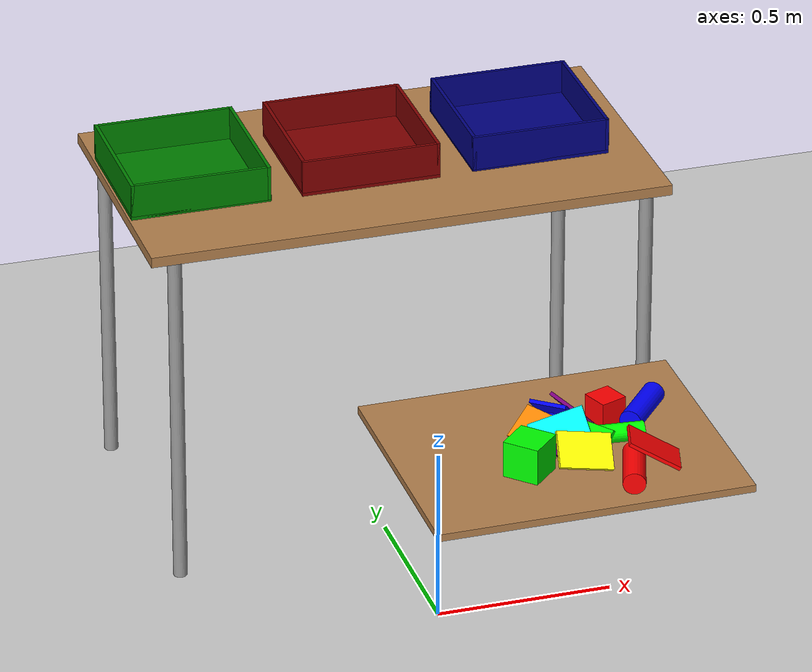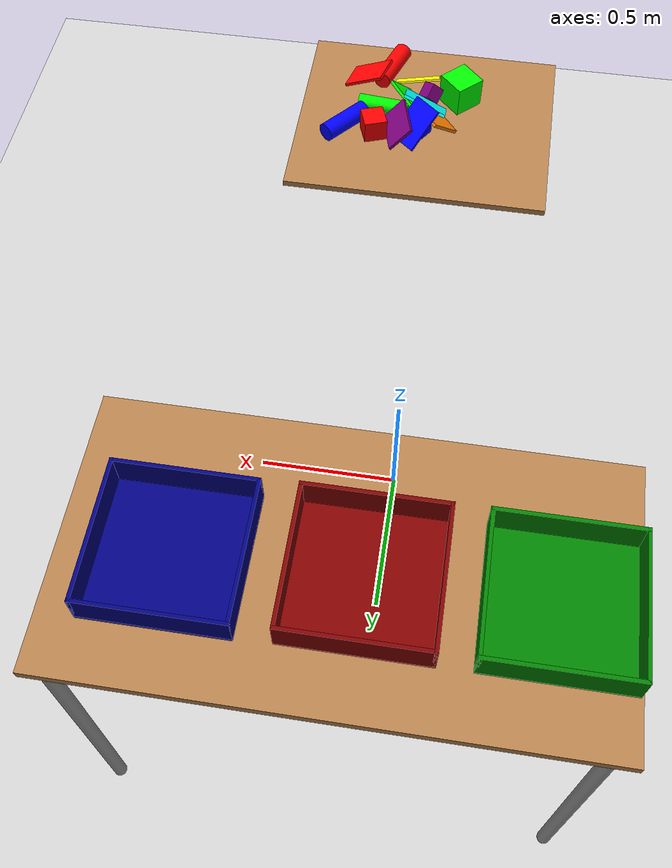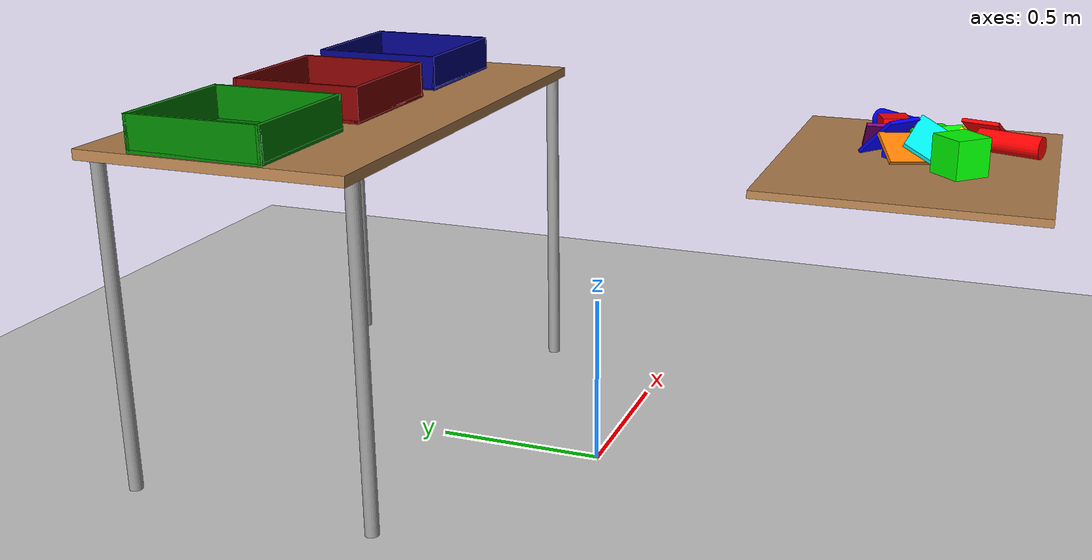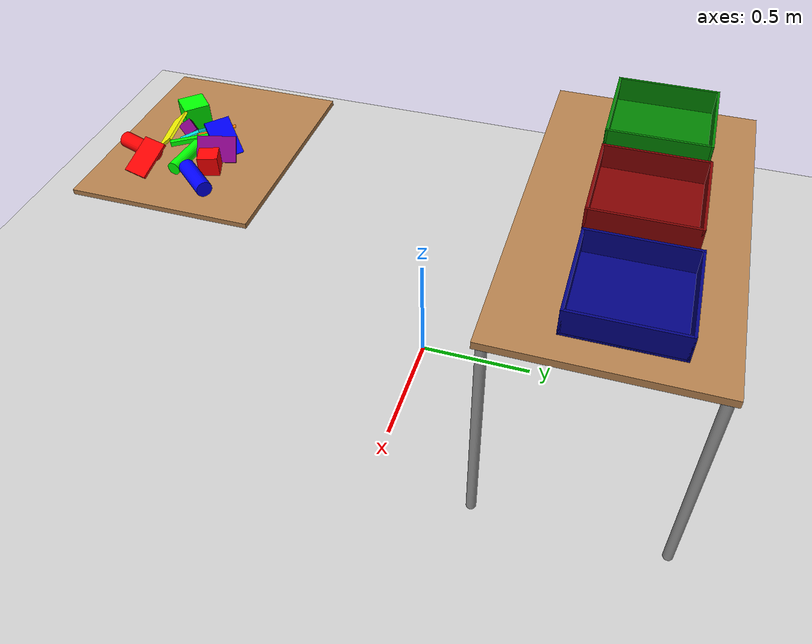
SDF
<sdf version="1.7">
 <world name="default">
  <light name="sun" type="directional">
   <pose>0 0 10 0 -0 0</pose>
   <diffuse>0.8 0.8 0.8 1</diffuse>
   <specular>0.2 0.2 0.2 1</specular>
   <attenuation>
    <range>1000</range>
    <constant>0.9</constant>
    <linear>0.01</linear>
    <quadratic>0.001</quadratic>
   </attenuation>
   <direction>-0.5 0.1 -0.9</direction>
   <spot><inner_angle>0</inner_angle><outer_angle>0</outer_angle><falloff>0</falloff></spot>
  </light>
  <model name="ground_plane">
   <static>1</static>
   <link name="link">
    <collision name="collision">
     <geometry><plane><normal>0 0 1</normal><size>100 100</size></plane></geometry>
     <surface><friction><ode><mu>100</mu><mu2>50</mu2></ode></friction></surface>
    </collision>
    <visual name="visual">
     <cast_shadows>0</cast_shadows>
     <geometry><plane><normal>0 0 1</normal><size>100 100</size></plane></geometry>
     <material>
      <script><uri>file://media/materials/scripts/gazebo.material</uri><name>Gazebo/Grey</name></script>
     </material>
    </visual>
   </link>
  </model>
  <gravity>0 0 -9.8</gravity>
  <magnetic_field>6e-06 2.3e-05 -4.2e-05</magnetic_field>
  <atmosphere type="adiabatic"/>
  <physics type="ode">
   <max_step_size>0.001</max_step_size>
   <real_time_factor>1</real_time_factor>
   <real_time_update_rate>1000</real_time_update_rate>
  </physics>
  <scene><ambient>0.4 0.4 0.4 1</ambient><background>0.7 0.7 0.7 1</background><shadows>1</shadows></scene>
  <audio><device>default</device></audio>
  <spherical_coordinates>
   <surface_model>EARTH_WGS84</surface_model>
   <latitude_deg>0</latitude_deg>
   <longitude_deg>0</longitude_deg>
   <elevation>0</elevation>
   <heading_deg>0</heading_deg>
  </spherical_coordinates>
  <model name="table">
   <static>1</static>
   <link name="link">
    <collision name="surface">
     <pose>0 0 1 0 -0 0</pose>
     <geometry><box><size>1.5 0.8 0.03</size></box></geometry>
     <surface>
      <friction><ode><mu>10</mu><mu2>5</mu2></ode></friction>
      <contact><ode><soft_cfm>0.0001</soft_cfm><soft_erp>0.4</soft_erp><kp>1e+06</kp><kd>10</kd></ode></contact>
     </surface>
    </collision>
    <visual name="visual1">
     <pose>0 0 1 0 -0 0</pose>
     <geometry><box><size>1.5 0.8 0.03</size></box></geometry>
     <material>
      <script><uri>file://media/materials/scripts/gazebo.material</uri><name>Gazebo/Wood</name></script>
     </material>
    </visual>
    <collision name="front_left_leg">
     <pose>0.68 0.38 0.5 0 -0 0</pose>
     <geometry><cylinder><radius>0.02</radius><length>1</length></cylinder></geometry>
    </collision>
    <visual name="front_left_leg">
     <pose>0.68 0.38 0.5 0 -0 0</pose>
     <geometry><cylinder><radius>0.02</radius><length>1</length></cylinder></geometry>
     <material>
      <script><uri>file://media/materials/scripts/gazebo.material</uri><name>Gazebo/Grey</name></script>
     </material>
    </visual>
    <collision name="front_right_leg">
     <pose>0.68 -0.38 0.5 0 -0 0</pose>
     <geometry><cylinder><radius>0.02</radius><length>1</length></cylinder></geometry>
    </collision>
    <visual name="front_right_leg">
     <pose>0.68 -0.38 0.5 0 -0 0</pose>
     <geometry><cylinder><radius>0.02</radius><length>1</length></cylinder></geometry>
     <material>
      <script><uri>file://media/materials/scripts/gazebo.material</uri><name>Gazebo/Grey</name></script>
     </material>
    </visual>
    <collision name="back_right_leg">
     <pose>-0.68 -0.38 0.5 0 -0 0</pose>
     <geometry><cylinder><radius>0.02</radius><length>1</length></cylinder></geometry>
    </collision>
    <visual name="back_right_leg">
     <pose>-0.68 -0.38 0.5 0 -0 0</pose>
     <geometry><cylinder><radius>0.02</radius><length>1</length></cylinder></geometry>
     <material>
      <script><uri>file://media/materials/scripts/gazebo.material</uri><name>Gazebo/Grey</name></script>
     </material>
    </visual>
    <collision name="back_left_leg">
     <pose>-0.68 0.38 0.5 0 -0 0</pose>
     <geometry><cylinder><radius>0.02</radius><length>1</length></cylinder></geometry>
    </collision>
    <visual name="back_left_leg">
     <pose>-0.68 0.38 0.5 0 -0 0</pose>
     <geometry><cylinder><radius>0.02</radius><length>1</length></cylinder></geometry>
     <material>
      <script><uri>file://media/materials/scripts/gazebo.material</uri><name>Gazebo/Grey</name></script>
     </material>
    </visual>
    <inertial>
     <inertia><ixx>1</ixx><ixy>0</ixy><ixz>0</ixz><iyy>1</iyy><iyz>0</iyz><izz>1</izz></inertia>
     <mass>50</mass>
    </inertial>
   </link>
   <pose>0.056083 0.801191 -1.2e-05 0 -0 2.5e-05</pose>
  </model>
  <plugin name="gazebo_link_attacher" filename="libgazebo_link_attacher.so"/>
  <plugin name="gazebo_ros_state" filename="libgazebo_ros_state.so">
   <namespace>/gazebo</namespace>
   <update_rate>100</update_rate>
  </plugin>
  <model name="cube_b">
   <link name="link_2">
    <inertial>
     <mass>2</mass>
     <inertia>
      <ixx>0.00083333</ixx>
      <ixy>0</ixy>
      <ixz>0</ixz>
      <iyy>0.00083333</iyy>
      <iyz>0</iyz>
      <izz>0.00083333</izz>
     </inertia>
    </inertial>
    <visual name="visual">
     <geometry><box><size>0.05 0.05 0.05</size></box></geometry>
     <material>
      <lighting>1</lighting>
      <script><uri>file://media/materials/scripts/gazebo.material</uri><name>Gazebo/Grey</name></script>
      <ambient>0 0 1 1</ambient>
      <diffuse>0 0 1 1</diffuse>
      <specular>0 0 0 1</specular>
      <emissive>0 0 0 1</emissive>
      <shader type="vertex"><normal_map>__default__</normal_map></shader>
     </material>
    </visual>
    <collision name="collision">
     <geometry><box><size>0.05 0.05 0.05</size></box></geometry>
     <surface>
      <friction>
       <ode><mu>0.8</mu><mu2>0.8</mu2><fdir1>0 0 0</fdir1><slip1>0</slip1><slip2>0</slip2></ode>
       <torsional>
        <coefficient>1</coefficient>
        <patch_radius>0</patch_radius>
        <surface_radius>0</surface_radius>
        <use_patch_radius>1</use_patch_radius>
        <ode><slip>0</slip></ode>
       </torsional>
      </friction>
      <bounce><restitution_coefficient>0</restitution_coefficient><threshold>1e+06</threshold></bounce>
      <contact>
       <collide_without_contact>0</collide_without_contact>
       <collide_without_contact_bitmask>1</collide_without_contact_bitmask>
       <collide_bitmask>1</collide_bitmask>
       <ode>
        <soft_cfm>0.0001</soft_cfm>
        <soft_erp>0.4</soft_erp>
        <kp>1e+06</kp>
        <kd>10</kd>
        <max_vel>0.01</max_vel>
        <min_depth>0</min_depth>
       </ode>
      </contact>
     </surface>
    </collision>
   </link>
   <static>0</static>
   <allow_auto_disable>0</allow_auto_disable>
   <pose>0.050526 -0.803777 1.01082 -0.003674 0.003183 2.56462</pose>
  </model>
  <model name="cube_g">
   <link name="link_2">
    <inertial>
     <mass>2</mass>
     <inertia>
      <ixx>0.00333333</ixx>
      <iyy>0.00333333</iyy>
      <izz>0.00333333</izz>
      <ixy>0</ixy>
      <ixz>0</ixz>
      <iyz>0</iyz>
     </inertia>
    </inertial>
    <visual name="visual">
     <geometry><box><size>0.1 0.1 0.1</size></box></geometry>
     <material>
      <lighting>1</lighting>
      <script><uri>file://media/materials/scripts/gazebo.material</uri><name>Gazebo/Grey</name></script>
      <ambient>0 1 0 1</ambient>
      <diffuse>0 1 0 1</diffuse>
      <specular>0 0 0 1</specular>
      <emissive>0 0 0 1</emissive>
      <shader type="vertex"><normal_map>__default__</normal_map></shader>
     </material>
    </visual>
    <collision name="collision">
     <geometry><box><size>0.1 0.1 0.1</size></box></geometry>
     <surface>
      <friction>
       <ode><mu>0.8</mu><mu2>0.8</mu2><fdir1>0 0 0</fdir1><slip1>0</slip1><slip2>0</slip2></ode>
       <torsional>
        <coefficient>1</coefficient>
        <patch_radius>0</patch_radius>
        <surface_radius>0</surface_radius>
        <use_patch_radius>1</use_patch_radius>
        <ode><slip>0</slip></ode>
       </torsional>
      </friction>
      <bounce><restitution_coefficient>0</restitution_coefficient><threshold>1e+06</threshold></bounce>
      <contact>
       <collide_without_contact>0</collide_without_contact>
       <collide_without_contact_bitmask>1</collide_without_contact_bitmask>
       <collide_bitmask>1</collide_bitmask>
       <ode>
        <soft_cfm>0.0001</soft_cfm>
        <soft_erp>0.4</soft_erp>
        <kp>1e+06</kp>
        <kd>10</kd>
        <max_vel>0.01</max_vel>
        <min_depth>0</min_depth>
       </ode>
      </contact>
     </surface>
    </collision>
   </link>
   <static>0</static>
   <allow_auto_disable>0</allow_auto_disable>
   <pose>-0.064502 -0.974048 1.03517 -0.002148 -0.003791 0.772024</pose>
  </model>
  <model name="cube_r">
   <link name="link_2">
    <inertial>
     <mass>2</mass>
     <inertia>
      <ixx>0.001875</ixx>
      <ixy>0</ixy>
      <ixz>0</ixz>
      <iyy>0.001875</iyy>
      <iyz>0</iyz>
      <izz>0.001875</izz>
     </inertia>
    </inertial>
    <visual name="visual">
     <geometry><box><size>0.075 0.075 0.075</size></box></geometry>
     <material>
      <lighting>1</lighting>
      <script><uri>file://media/materials/scripts/gazebo.material</uri><name>Gazebo/Grey</name></script>
      <ambient>1 0 0 1</ambient>
      <diffuse>1 0 0 1</diffuse>
      <specular>0 0 0 1</specular>
      <emissive>0 0 0 1</emissive>
      <shader type="vertex"><normal_map>__default__</normal_map></shader>
     </material>
    </visual>
    <collision name="collision">
     <geometry><box><size>0.075 0.075 0.075</size></box></geometry>
     <surface>
      <friction>
       <ode><mu>0.8</mu><mu2>0.8</mu2><fdir1>0 0 0</fdir1><slip1>0</slip1><slip2>0</slip2></ode>
       <torsional>
        <coefficient>1</coefficient>
        <patch_radius>0</patch_radius>
        <surface_radius>0</surface_radius>
        <use_patch_radius>1</use_patch_radius>
        <ode><slip>0</slip></ode>
       </torsional>
      </friction>
      <bounce><restitution_coefficient>0</restitution_coefficient><threshold>1e+06</threshold></bounce>
      <contact>
       <collide_without_contact>0</collide_without_contact>
       <collide_without_contact_bitmask>1</collide_without_contact_bitmask>
       <collide_bitmask>1</collide_bitmask>
       <ode>
        <soft_cfm>0.0001</soft_cfm>
        <soft_erp>0.4</soft_erp>
        <kp>1e+06</kp>
        <kd>10</kd>
        <max_vel>0.01</max_vel>
        <min_depth>0</min_depth>
       </ode>
      </contact>
     </surface>
    </collision>
   </link>
   <static>0</static>
   <allow_auto_disable>0</allow_auto_disable>
   <pose>0.207484 -0.775313 1.02403 -1.56654 -0.000352 -1.21932</pose>
  </model>
  <model name="cylinder_r">
   <link name="link_0">
    <inertial>
     <mass>0.2</mass>
     <inertia>
      <ixx>0.0005267</ixx>
      <ixy>0</ixy>
      <ixz>0</ixz>
      <iyy>0.0005267</iyy>
      <iyz>0</iyz>
      <izz>9e-05</izz>
     </inertia>
    </inertial>
    <visual name="visual">
     <geometry><cylinder><radius>0.03</radius><length>0.17</length></cylinder></geometry>
     <material>
      <lighting>1</lighting>
      <script><uri>file://media/materials/scripts/gazebo.material</uri><name>Gazebo/Grey</name></script>
      <ambient>1 0 0 1</ambient>
      <diffuse>1 0 0 1</diffuse>
      <specular>0 0 0 1</specular>
      <emissive>0 0 0 1</emissive>
      <shader type="vertex"><normal_map>__default__</normal_map></shader>
     </material>
    </visual>
    <collision name="collision">
     <geometry><cylinder><radius>0.03</radius><length>0.17</length></cylinder></geometry>
     <surface>
      <friction>
       <ode><mu>0.5</mu><mu2>0.5</mu2><fdir1>0 0 0</fdir1><slip1>0</slip1><slip2>0</slip2></ode>
       <torsional>
        <coefficient>1</coefficient>
        <patch_radius>0</patch_radius>
        <surface_radius>0</surface_radius>
        <use_patch_radius>1</use_patch_radius>
        <ode><slip>0</slip></ode>
       </torsional>
      </friction>
      <bounce><restitution_coefficient>0</restitution_coefficient><threshold>1e+06</threshold></bounce>
      <contact>
       <collide_without_contact>0</collide_without_contact>
       <collide_without_contact_bitmask>1</collide_without_contact_bitmask>
       <collide_bitmask>1</collide_bitmask>
       <ode>
        <soft_cfm>0.0001</soft_cfm>
        <soft_erp>0.4</soft_erp>
        <kp>1e+06</kp>
        <kd>10</kd>
        <max_vel>0.01</max_vel>
        <min_depth>0</min_depth>
       </ode>
      </contact>
     </surface>
    </collision>
   </link>
   <static>0</static>
   <allow_auto_disable>0</allow_auto_disable>
   <pose>0.182011 -1.08188 1.01607 1.57923 1.29417 -0.320116</pose>
  </model>
  <model name="cylinder_b">
   <link name="link_0">
    <inertial>
     <mass>0.2</mass>
     <inertia>
      <ixx>0.0005267</ixx>
      <ixy>0</ixy>
      <ixz>0</ixz>
      <iyy>0.0005267</iyy>
      <iyz>0</iyz>
      <izz>9e-05</izz>
     </inertia>
    </inertial>
    <visual name="visual">
     <geometry><cylinder><radius>0.03</radius><length>0.17</length></cylinder></geometry>
     <material>
      <lighting>1</lighting>
      <ambient>0 0 1 1</ambient>
      <diffuse>0 0 1 1</diffuse>
      <specular>0.1 0.1 0.1 1</specular>
      <emissive>0 0 0 1</emissive>
      <shader type="vertex"><normal_map>__default__</normal_map></shader>
     </material>
    </visual>
    <collision name="collision">
     <geometry><cylinder><radius>0.03</radius><length>0.17</length></cylinder></geometry>
     <surface>
      <friction>
       <ode><mu>0.4</mu><mu2>0.4</mu2><fdir1>0 0 0</fdir1><slip1>0</slip1><slip2>0</slip2></ode>
       <torsional>
        <coefficient>1</coefficient>
        <patch_radius>0</patch_radius>
        <surface_radius>0</surface_radius>
        <use_patch_radius>1</use_patch_radius>
        <ode><slip>0</slip></ode>
       </torsional>
      </friction>
      <bounce><restitution_coefficient>0</restitution_coefficient><threshold>1e+06</threshold></bounce>
      <contact>
       <collide_without_contact>0</collide_without_contact>
       <collide_without_contact_bitmask>1</collide_without_contact_bitmask>
       <collide_bitmask>1</collide_bitmask>
       <ode>
        <soft_cfm>0.0001</soft_cfm>
        <soft_erp>0.4</soft_erp>
        <kp>1e+06</kp>
        <kd>10</kd>
        <max_vel>0.01</max_vel>
        <min_depth>0</min_depth>
       </ode>
      </contact>
     </surface>
    </collision>
   </link>
   <static>0</static>
   <allow_auto_disable>0</allow_auto_disable>
   <pose>0.30551 -0.784829 1.01693 -1.56355 1.0615 -0.691824</pose>
  </model>
  <model name="cylinder_g">
   <link name="link_0">
    <inertial>
     <mass>0.2</mass>
     <inertia>
      <ixx>0.0005129</ixx>
      <ixy>0</ixy>
      <ixz>0</ixz>
      <iyy>0.0005129</iyy>
      <iyz>0</iyz>
      <izz>6.25e-05</izz>
     </inertia>
    </inertial>
    <visual name="visual">
     <geometry><cylinder><radius>0.025</radius><length>0.17</length></cylinder></geometry>
     <material>
      <lighting>1</lighting>
      <ambient>0 1 0 1</ambient>
      <diffuse>0 1 0 1</diffuse>
      <specular>0.1 0.1 0.1 1</specular>
      <emissive>0 0 0 1</emissive>
      <shader type="vertex"><normal_map>__default__</normal_map></shader>
     </material>
    </visual>
    <collision name="collision">
     <geometry><cylinder><radius>0.025</radius><length>0.17</length></cylinder></geometry>
     <surface>
      <friction>
       <ode><mu>0.5</mu><mu2>0.5</mu2><fdir1>0 0 0</fdir1><slip1>0</slip1><slip2>0</slip2></ode>
       <torsional>
        <coefficient>1</coefficient>
        <patch_radius>0</patch_radius>
        <surface_radius>0</surface_radius>
        <use_patch_radius>1</use_patch_radius>
        <ode><slip>0</slip></ode>
       </torsional>
      </friction>
      <bounce><restitution_coefficient>0</restitution_coefficient><threshold>1e+06</threshold></bounce>
      <contact>
       <collide_without_contact>0</collide_without_contact>
       <collide_without_contact_bitmask>1</collide_without_contact_bitmask>
       <collide_bitmask>1</collide_bitmask>
       <ode>
        <soft_cfm>0.0001</soft_cfm>
        <soft_erp>0.4</soft_erp>
        <kp>1e+06</kp>
        <kd>10</kd>
        <max_vel>0.01</max_vel>
        <min_depth>0</min_depth>
       </ode>
      </contact>
     </surface>
    </collision>
   </link>
   <static>0</static>
   <allow_auto_disable>0</allow_auto_disable>
   <pose>0.187407 -0.886133 1.01128 -1.54193 -1.41886 -1.69191</pose>
  </model>
  <model name="cuboid_r">
   <link name="link">
    <inertial>
     <mass>2</mass>
     <inertia>
      <ixx>0.001683</ixx>
      <iyy>0.003767</iyy>
      <izz>0.005417</izz>
      <ixy>0</ixy>
      <ixz>0</ixz>
      <iyz>0</iyz>
     </inertia>
    </inertial>
    <visual name="visual">
     <geometry><box><size>0.15 0.1 0.01</size></box></geometry>
     <material><ambient>1 0 0 1</ambient><diffuse>1 0 0 1</diffuse><specular>0.1 0.1 0.1 1</specular></material>
    </visual>
    <collision name="collision">
     <geometry><box><size>0.15 0.1 0.01</size></box></geometry>
     <surface>
      <friction>
       <ode><mu>0.6</mu><mu2>0.6</mu2><fdir1>0 0 0</fdir1><slip1>0</slip1><slip2>0</slip2></ode>
       <torsional>
        <coefficient>1</coefficient>
        <patch_radius>0</patch_radius>
        <surface_radius>0</surface_radius>
        <use_patch_radius>1</use_patch_radius>
        <ode><slip>0</slip></ode>
       </torsional>
      </friction>
      <bounce><restitution_coefficient>0</restitution_coefficient><threshold>1e+06</threshold></bounce>
      <contact>
       <collide_without_contact>0</collide_without_contact>
       <collide_without_contact_bitmask>1</collide_without_contact_bitmask>
       <collide_bitmask>1</collide_bitmask>
       <ode>
        <soft_cfm>0.0001</soft_cfm>
        <soft_erp>0.4</soft_erp>
        <kp>1e+06</kp>
        <kd>10</kd>
        <max_vel>0.01</max_vel>
        <min_depth>0</min_depth>
       </ode>
      </contact>
     </surface>
    </collision>
   </link>
   <static>0</static>
   <allow_auto_disable>0</allow_auto_disable>
   <pose>0.257312 -1.0176 1.0279 -0.002512 -0.51372 2.87027</pose>
  </model>
  <model name="cuboid_g">
   <link name="link">
    <inertial>
     <mass>2</mass>
     <inertia>
      <ixx>0.001683</ixx>
      <iyy>0.003767</iyy>
      <izz>0.005417</izz>
      <ixy>0</ixy>
      <ixz>0</ixz>
      <iyz>0</iyz>
     </inertia>
    </inertial>
    <visual name="visual">
     <geometry><box><size>0.15 0.1 0.01</size></box></geometry>
     <material><ambient>0 1 0 1</ambient><diffuse>0 1 0 1</diffuse><specular>0.1 0.1 0.1 1</specular></material>
    </visual>
    <collision name="collision">
     <geometry><box><size>0.15 0.1 0.01</size></box></geometry>
     <surface>
      <friction>
       <ode><mu>0.6</mu><mu2>0.6</mu2><fdir1>0 0 0</fdir1><slip1>0</slip1><slip2>0</slip2></ode>
       <torsional>
        <coefficient>1</coefficient>
        <patch_radius>0</patch_radius>
        <surface_radius>0</surface_radius>
        <use_patch_radius>1</use_patch_radius>
        <ode><slip>0</slip></ode>
       </torsional>
      </friction>
      <bounce><restitution_coefficient>0</restitution_coefficient><threshold>1e+06</threshold></bounce>
      <contact>
       <collide_without_contact>0</collide_without_contact>
       <collide_without_contact_bitmask>1</collide_without_contact_bitmask>
       <collide_bitmask>1</collide_bitmask>
       <ode>
        <soft_cfm>0.0001</soft_cfm>
        <soft_erp>0.4</soft_erp>
        <kp>1e+06</kp>
        <kd>10</kd>
        <max_vel>0.01</max_vel>
        <min_depth>0</min_depth>
       </ode>
      </contact>
     </surface>
    </collision>
   </link>
   <static>0</static>
   <allow_auto_disable>0</allow_auto_disable>
   <pose>0.097228 -0.915665 1.02287 0.730793 -0.001502 -0.94494</pose>
  </model>
  <model name="cuboid_b">
   <link name="link">
    <inertial>
     <mass>2</mass>
     <inertia>
      <ixx>0.001683</ixx>
      <iyy>0.003767</iyy>
      <izz>0.005417</izz>
      <ixy>0</ixy>
      <ixz>0</ixz>
      <iyz>0</iyz>
     </inertia>
    </inertial>
    <visual name="visual">
     <geometry><box><size>0.15 0.1 0.01</size></box></geometry>
     <material><ambient>0 0 1 1</ambient><diffuse>0 0 1 1</diffuse><specular>0.1 0.1 0.1 1</specular></material>
    </visual>
    <collision name="collision">
     <geometry><box><size>0.15 0.1 0.01</size></box></geometry>
     <surface>
      <friction>
       <ode><mu>0.6</mu><mu2>0.6</mu2><fdir1>0 0 0</fdir1><slip1>0</slip1><slip2>0</slip2></ode>
       <torsional>
        <coefficient>1</coefficient>
        <patch_radius>0</patch_radius>
        <surface_radius>0</surface_radius>
        <use_patch_radius>1</use_patch_radius>
        <ode><slip>0</slip></ode>
       </torsional>
      </friction>
      <bounce><restitution_coefficient>0</restitution_coefficient><threshold>1e+06</threshold></bounce>
      <contact>
       <collide_without_contact>0</collide_without_contact>
       <collide_without_contact_bitmask>1</collide_without_contact_bitmask>
       <collide_bitmask>1</collide_bitmask>
       <ode>
        <soft_cfm>0.0001</soft_cfm>
        <soft_erp>0.4</soft_erp>
        <kp>1e+06</kp>
        <kd>10</kd>
        <max_vel>0.01</max_vel>
        <min_depth>0</min_depth>
       </ode>
      </contact>
     </surface>
    </collision>
   </link>
   <static>0</static>
   <allow_auto_disable>0</allow_auto_disable>
   <pose>0.070184 -0.780834 1.03997 -0.021326 0.718885 0.854987</pose>
  </model>
  <model name="cuboid_purple">
   <link name="link">
    <inertial>
     <mass>2</mass>
     <inertia>
      <ixx>0.001683</ixx>
      <iyy>0.003767</iyy>
      <izz>0.005417</izz>
      <ixy>0</ixy>
      <ixz>0</ixz>
      <iyz>0</iyz>
     </inertia>
    </inertial>
    <visual name="visual">
     <geometry><box><size>0.15 0.1 0.01</size></box></geometry>
     <material>
      <ambient>0.5 0 0.5 1</ambient>
      <diffuse>0.5 0 0.5 1</diffuse>
      <specular>0.1 0.1 0.1 1</specular>
     </material>
    </visual>
    <collision name="collision">
     <geometry><box><size>0.15 0.1 0.01</size></box></geometry>
     <surface>
      <friction>
       <ode><mu>0.6</mu><mu2>0.6</mu2><fdir1>0 0 0</fdir1><slip1>0</slip1><slip2>0</slip2></ode>
       <torsional>
        <coefficient>1</coefficient>
        <patch_radius>0</patch_radius>
        <surface_radius>0</surface_radius>
        <use_patch_radius>1</use_patch_radius>
        <ode><slip>0</slip></ode>
       </torsional>
      </friction>
      <bounce><restitution_coefficient>0</restitution_coefficient><threshold>1e+06</threshold></bounce>
      <contact>
       <collide_without_contact>0</collide_without_contact>
       <collide_without_contact_bitmask>1</collide_without_contact_bitmask>
       <collide_bitmask>1</collide_bitmask>
       <ode>
        <soft_cfm>0.0001</soft_cfm>
        <soft_erp>0.4</soft_erp>
        <kp>1e+06</kp>
        <kd>10</kd>
        <max_vel>0.01</max_vel>
        <min_depth>0</min_depth>
       </ode>
      </contact>
     </surface>
    </collision>
   </link>
   <static>0</static>
   <allow_auto_disable>0</allow_auto_disable>
   <pose>0.128776 -0.784724 1.02594 -0.808917 -0.000111 -1.29887</pose>
  </model>
  <model name="cuboid_orange">
   <link name="link">
    <inertial>
     <mass>2</mass>
     <inertia>
      <ixx>0.001683</ixx>
      <iyy>0.003767</iyy>
      <izz>0.005417</izz>
      <ixy>0</ixy>
      <ixz>0</ixz>
      <iyz>0</iyz>
     </inertia>
    </inertial>
    <visual name="visual">
     <geometry><box><size>0.15 0.1 0.01</size></box></geometry>
     <material>
      <ambient>1 0.5 0 1</ambient>
      <diffuse>1 0.5 0 1</diffuse>
      <specular>0.1 0.1 0.1 1</specular>
     </material>
    </visual>
    <collision name="collision">
     <geometry><box><size>0.15 0.1 0.01</size></box></geometry>
     <surface>
      <friction>
       <ode><mu>0.6</mu><mu2>0.6</mu2><fdir1>0 0 0</fdir1><slip1>0</slip1><slip2>0</slip2></ode>
       <torsional>
        <coefficient>1</coefficient>
        <patch_radius>0</patch_radius>
        <surface_radius>0</surface_radius>
        <use_patch_radius>1</use_patch_radius>
        <ode><slip>0</slip></ode>
       </torsional>
      </friction>
      <bounce><restitution_coefficient>0</restitution_coefficient><threshold>1e+06</threshold></bounce>
      <contact>
       <collide_without_contact>0</collide_without_contact>
       <collide_without_contact_bitmask>1</collide_without_contact_bitmask>
       <collide_bitmask>1</collide_bitmask>
       <ode>
        <soft_cfm>0.0001</soft_cfm>
        <soft_erp>0.4</soft_erp>
        <kp>1e+06</kp>
        <kd>10</kd>
        <max_vel>0.01</max_vel>
        <min_depth>0</min_depth>
       </ode>
      </contact>
     </surface>
    </collision>
   </link>
   <static>0</static>
   <allow_auto_disable>0</allow_auto_disable>
   <pose>0.010285 -0.84347 1.02375 0.609743 0.073771 -0.956206</pose>
  </model>
  <model name="cuboid_yellow">
   <link name="link">
    <inertial>
     <mass>2</mass>
     <inertia>
      <ixx>0.001683</ixx>
      <iyy>0.003767</iyy>
      <izz>0.005417</izz>
      <ixy>0</ixy>
      <ixz>0</ixz>
      <iyz>0</iyz>
     </inertia>
    </inertial>
    <visual name="visual">
     <geometry><box><size>0.15 0.1 0.01</size></box></geometry>
     <material><ambient>1 1 0 1</ambient><diffuse>1 1 0 1</diffuse><specular>0.1 0.1 0.1 1</specular></material>
    </visual>
    <collision name="collision">
     <geometry><box><size>0.15 0.1 0.01</size></box></geometry>
     <surface>
      <friction>
       <ode><mu>0.6</mu><mu2>0.6</mu2><fdir1>0 0 0</fdir1><slip1>0</slip1><slip2>0</slip2></ode>
       <torsional>
        <coefficient>1</coefficient>
        <patch_radius>0</patch_radius>
        <surface_radius>0</surface_radius>
        <use_patch_radius>1</use_patch_radius>
        <ode><slip>0</slip></ode>
       </torsional>
      </friction>
      <bounce><restitution_coefficient>0</restitution_coefficient><threshold>1e+06</threshold></bounce>
      <contact>
       <collide_without_contact>0</collide_without_contact>
       <collide_without_contact_bitmask>1</collide_without_contact_bitmask>
       <collide_bitmask>1</collide_bitmask>
       <ode>
        <soft_cfm>0.0001</soft_cfm>
        <soft_erp>0.4</soft_erp>
        <kp>1e+06</kp>
        <kd>10</kd>
        <max_vel>0.01</max_vel>
        <min_depth>0</min_depth>
       </ode>
      </contact>
     </surface>
    </collision>
   </link>
   <static>0</static>
   <allow_auto_disable>0</allow_auto_disable>
   <pose>0.076488 -0.998589 1.03828 -0.749885 -0.206734 -3.12655</pose>
  </model>
  <model name="cuboid_cyan">
   <link name="link">
    <inertial>
     <mass>2</mass>
     <inertia>
      <ixx>0.001683</ixx>
      <iyy>0.003767</iyy>
      <izz>0.005417</izz>
      <ixy>0</ixy>
      <ixz>0</ixz>
      <iyz>0</iyz>
     </inertia>
    </inertial>
    <visual name="visual">
     <geometry><box><size>0.15 0.1 0.01</size></box></geometry>
     <material><ambient>0 1 1 1</ambient><diffuse>0 1 1 1</diffuse><specular>0.1 0.1 0.1 1</specular></material>
    </visual>
    <collision name="collision">
     <geometry><box><size>0.15 0.1 0.01</size></box></geometry>
     <surface>
      <friction>
       <ode><mu>0.6</mu><mu2>0.6</mu2><fdir1>0 0 0</fdir1><slip1>0</slip1><slip2>0</slip2></ode>
       <torsional>
        <coefficient>1</coefficient>
        <patch_radius>0</patch_radius>
        <surface_radius>0</surface_radius>
        <use_patch_radius>1</use_patch_radius>
        <ode><slip>0</slip></ode>
       </torsional>
      </friction>
      <bounce><restitution_coefficient>0</restitution_coefficient><threshold>1e+06</threshold></bounce>
      <contact>
       <collide_without_contact>0</collide_without_contact>
       <collide_without_contact_bitmask>1</collide_without_contact_bitmask>
       <collide_bitmask>1</collide_bitmask>
       <ode>
        <soft_cfm>0.0001</soft_cfm>
        <soft_erp>0.4</soft_erp>
        <kp>1e+06</kp>
        <kd>10</kd>
        <max_vel>0.01</max_vel>
        <min_depth>0</min_depth>
       </ode>
      </contact>
     </surface>
    </collision>
   </link>
   <static>0</static>
   <allow_auto_disable>0</allow_auto_disable>
   <pose>0.046902 -0.886136 1.03833 -0.550985 0.327193 2.95535</pose>
  </model>
  <model name="workspace">
   <link name="link">
    <inertial>
     <mass>100</mass>
     <inertia><ixx>6.02417</ixx><ixy>0</ixy><ixz>0</ixz><iyy>4.08667</iyy><iyz>0</iyz><izz>10.1042</izz></inertia>
    </inertial>
    <visual name="visual">
     <geometry><box><size>0.7 0.85 0.02</size></box></geometry>
     <material>
      <script><name>Gazebo/Wood</name><uri>file://media/materials/scripts/gazebo.material</uri></script>
      <shader type="pixel"/>
     </material>
    </visual>
    <collision name="collision">
     <geometry><box><size>0.7 0.85 0.02</size></box></geometry>
     <surface>
      <friction>
       <ode><mu>100</mu><mu2>50</mu2><fdir1>0 0 0</fdir1><slip1>0</slip1><slip2>0</slip2></ode>
       <torsional>
        <coefficient>1</coefficient>
        <patch_radius>0</patch_radius>
        <surface_radius>0</surface_radius>
        <use_patch_radius>1</use_patch_radius>
        <ode><slip>0</slip></ode>
       </torsional>
      </friction>
      <bounce><restitution_coefficient>0</restitution_coefficient><threshold>1e+06</threshold></bounce>
      <contact>
       <collide_without_contact>0</collide_without_contact>
       <collide_without_contact_bitmask>1</collide_without_contact_bitmask>
       <collide_bitmask>1</collide_bitmask>
       <ode>
        <soft_cfm>0.0001</soft_cfm>
        <soft_erp>0.2</soft_erp>
        <kp>1e+13</kp>
        <kd>10</kd>
        <max_vel>0.01</max_vel>
        <min_depth>0</min_depth>
       </ode>
       <bullet>
        <split_impulse>1</split_impulse>
        <split_impulse_penetration_threshold>-0.01</split_impulse_penetration_threshold>
        <soft_cfm>0</soft_cfm>
        <soft_erp>0.2</soft_erp>
        <kp>1e+13</kp>
        <kd>1</kd>
       </bullet>
      </contact>
     </surface>
    </collision>
   </link>
   <static>1</static>
   <pose>0.0416 -0.859914 0.975746 -0.004154 -0.001127 1.57039</pose>
  </model>
  <model name="tray_red">
   <static>1</static>
   <link name="link">
    <collision name="base_collision">
     <pose>0 0 0.01 0 -0 0</pose>
     <geometry><box><size>0.4 0.4 0.01</size></box></geometry>
     <surface><contact><ode><mu>50</mu><mu2>50</mu2></ode></contact></surface>
    </collision>
    <visual name="base_visual">
     <pose>0 0 0.01 0 -0 0</pose>
     <geometry><box><size>0.4 0.4 0.01</size></box></geometry>
     <material>
      <ambient>1 0 0 1</ambient>
      <diffuse>0.5 0 0 1</diffuse>
      <specular>0 0 0 1</specular>
      <emissive>0 0 0 1</emissive>
      <shininess>100</shininess>
     </material>
    </visual>
    <collision name="front_collision">
     <pose>0 0.195 0.06 0 -0 0</pose>
     <geometry><box><size>0.4 0.01 0.1</size></box></geometry>
    </collision>
    <visual name="front_visual">
     <pose>0 0.195 0.06 0 -0 0</pose>
     <geometry><box><size>0.4 0.01 0.1</size></box></geometry>
     <material>
      <ambient>1 0 0 1</ambient>
      <diffuse>0.5 0 0 1</diffuse>
      <specular>0 0 0 1</specular>
      <emissive>0 0 0 1</emissive>
     </material>
    </visual>
    <collision name="back_collision">
     <pose>0 -0.195 0.06 0 -0 0</pose>
     <geometry><box><size>0.4 0.01 0.1</size></box></geometry>
    </collision>
    <visual name="back_visual">
     <pose>0 -0.195 0.06 0 -0 0</pose>
     <geometry><box><size>0.4 0.01 0.1</size></box></geometry>
     <material>
      <ambient>1 0 0 1</ambient>
      <diffuse>0.5 0 0 1</diffuse>
      <specular>0 0 0 1</specular>
      <emissive>0 0 0 1</emissive>
     </material>
    </visual>
    <collision name="left_collision">
     <pose>0.195 0 0.06 0 -0 0</pose>
     <geometry><box><size>0.01 0.4 0.1</size></box></geometry>
    </collision>
    <visual name="left_visual">
     <pose>0.195 0 0.06 0 -0 0</pose>
     <geometry><box><size>0.01 0.4 0.1</size></box></geometry>
     <material>
      <ambient>1 0 0 1</ambient>
      <diffuse>0.5 0 0 1</diffuse>
      <specular>0 0 0 1</specular>
      <emissive>0 0 0 1</emissive>
     </material>
    </visual>
    <collision name="right_collision">
     <pose>-0.195 0 0.06 0 -0 0</pose>
     <geometry><box><size>0.01 0.4 0.1</size></box></geometry>
    </collision>
    <visual name="right_visual">
     <pose>-0.195 0 0.06 0 -0 0</pose>
     <geometry><box><size>0.01 0.4 0.1</size></box></geometry>
     <material>
      <ambient>1 0 0 1</ambient>
      <diffuse>0.5 0 0 1</diffuse>
      <specular>0 0 0 1</specular>
      <emissive>0 0 0 1</emissive>
     </material>
    </visual>
    <inertial>
     <inertia><ixx>1</ixx><ixy>0</ixy><ixz>0</ixz><iyy>1</iyy><iyz>0</iyz><izz>1</izz></inertia>
     <mass>1</mass>
    </inertial>
   </link>
   <pose>0.003367 0.836815 1.00999 0 -0 0</pose>
  </model>
  <model name="tray_green">
   <static>1</static>
   <link name="link">
    <collision name="base_collision">
     <pose>0 0 0.01 0 -0 0</pose>
     <geometry><box><size>0.4 0.4 0.01</size></box></geometry>
     <surface><contact><ode><mu>50</mu><mu2>50</mu2></ode></contact></surface>
    </collision>
    <visual name="base_visual">
     <pose>0 0 0.01 0 -0 0</pose>
     <geometry><box><size>0.4 0.4 0.01</size></box></geometry>
     <material><ambient>0 1 0 1</ambient><diffuse>0 0.5 0 1</diffuse></material>
    </visual>
    <collision name="front_collision">
     <pose>0 0.195 0.06 0 -0 0</pose>
     <geometry><box><size>0.4 0.01 0.1</size></box></geometry>
    </collision>
    <visual name="front_visual">
     <pose>0 0.195 0.06 0 -0 0</pose>
     <geometry><box><size>0.4 0.01 0.1</size></box></geometry>
     <material><ambient>0 1 0 1</ambient><diffuse>0 0.5 0 1</diffuse></material>
    </visual>
    <collision name="back_collision">
     <pose>0 -0.195 0.06 0 -0 0</pose>
     <geometry><box><size>0.4 0.01 0.1</size></box></geometry>
    </collision>
    <visual name="back_visual">
     <pose>0 -0.195 0.06 0 -0 0</pose>
     <geometry><box><size>0.4 0.01 0.1</size></box></geometry>
     <material><ambient>0 1 0 1</ambient><diffuse>0 0.5 0 1</diffuse></material>
    </visual>
    <collision name="left_collision">
     <pose>0.195 0 0.06 0 -0 0</pose>
     <geometry><box><size>0.01 0.4 0.1</size></box></geometry>
    </collision>
    <visual name="left_visual">
     <pose>0.195 0 0.06 0 -0 0</pose>
     <geometry><box><size>0.01 0.4 0.1</size></box></geometry>
     <material><ambient>0 1 0 1</ambient><diffuse>0 0.5 0 1</diffuse></material>
    </visual>
    <collision name="right_collision">
     <pose>-0.195 0 0.06 0 -0 0</pose>
     <geometry><box><size>0.01 0.4 0.1</size></box></geometry>
    </collision>
    <visual name="right_visual">
     <pose>-0.195 0 0.06 0 -0 0</pose>
     <geometry><box><size>0.01 0.4 0.1</size></box></geometry>
     <material><ambient>0 1 0 1</ambient><diffuse>0 0.5 0 1</diffuse></material>
    </visual>
    <inertial>
     <inertia><ixx>1</ixx><ixy>0</ixy><ixz>0</ixz><iyy>1</iyy><iyz>0</iyz><izz>1</izz></inertia>
     <mass>1</mass>
    </inertial>
   </link>
   <pose>-0.487214 0.834657 1.00999 0 -0 0</pose>
  </model>
  <model name="tray_blue">
   <static>1</static>
   <link name="link">
    <collision name="base_collision">
     <pose>0 0 0.01 0 -0 0</pose>
     <geometry><box><size>0.4 0.4 0.01</size></box></geometry>
     <surface><contact><ode><mu>50</mu><mu2>50</mu2></ode></contact></surface>
    </collision>
    <visual name="base_visual">
     <pose>0 0 0.01 0 -0 0</pose>
     <geometry><box><size>0.4 0.4 0.01</size></box></geometry>
     <material><ambient>0 0 1 1</ambient><diffuse>0 0 0.5 1</diffuse></material>
    </visual>
    <collision name="front_collision">
     <pose>0 0.195 0.06 0 -0 0</pose>
     <geometry><box><size>0.4 0.01 0.1</size></box></geometry>
    </collision>
    <visual name="front_visual">
     <pose>0 0.195 0.06 0 -0 0</pose>
     <geometry><box><size>0.4 0.01 0.1</size></box></geometry>
     <material><ambient>0 0 1 1</ambient><diffuse>0 0 0.5 1</diffuse></material>
    </visual>
    <collision name="back_collision">
     <pose>0 -0.195 0.06 0 -0 0</pose>
     <geometry><box><size>0.4 0.01 0.1</size></box></geometry>
    </collision>
    <visual name="back_visual">
     <pose>0 -0.195 0.06 0 -0 0</pose>
     <geometry><box><size>0.4 0.01 0.1</size></box></geometry>
     <material><ambient>0 0 1 1</ambient><diffuse>0 0 0.5 1</diffuse></material>
    </visual>
    <collision name="left_collision">
     <pose>0.195 0 0.06 0 -0 0</pose>
     <geometry><box><size>0.01 0.4 0.1</size></box></geometry>
    </collision>
    <visual name="left_visual">
     <pose>0.195 0 0.06 0 -0 0</pose>
     <geometry><box><size>0.01 0.4 0.1</size></box></geometry>
     <material><ambient>0 0 1 1</ambient><diffuse>0 0 0.5 1</diffuse></material>
    </visual>
    <collision name="right_collision">
     <pose>-0.195 0 0.06 0 -0 0</pose>
     <geometry><box><size>0.01 0.4 0.1</size></box></geometry>
    </collision>
    <visual name="right_visual">
     <pose>-0.195 0 0.06 0 -0 0</pose>
     <geometry><box><size>0.01 0.4 0.1</size></box></geometry>
     <material><ambient>0 0 1 1</ambient><diffuse>0 0 0.5 1</diffuse></material>
    </visual>
    <inertial>
     <inertia><ixx>1</ixx><ixy>0</ixy><ixz>0</ixz><iyy>1</iyy><iyz>0</iyz><izz>1</izz></inertia>
     <mass>1</mass>
    </inertial>
   </link>
   <pose>0.500589 0.844197 1.00999 0 -0 0</pose>
  </model>
  <model name="cube_purple">
   <link name="link_2">
    <inertial>
     <mass>2</mass>
     <inertia>
      <ixx>0.00083333</ixx>
      <ixy>0</ixy>
      <ixz>0</ixz>
      <iyy>0.00083333</iyy>
      <iyz>0</iyz>
      <izz>0.00083333</izz>
     </inertia>
    </inertial>
    <visual name="visual">
     <geometry><box><size>0.05 0.05 0.05</size></box></geometry>
     <material>
      <lighting>1</lighting>
      <script><uri>file://media/materials/scripts/gazebo.material</uri><name>Gazebo/Grey</name></script>
      <ambient>0.5 0 0.5 1</ambient>
      <diffuse>0.5 0 0.5 1</diffuse>
      <specular>0.1 0.1 0.1 1</specular>
      <emissive>0 0 0 1</emissive>
      <shader type="vertex"><normal_map>__default__</normal_map></shader>
     </material>
    </visual>
    <collision name="collision">
     <geometry><box><size>0.05 0.05 0.05</size></box></geometry>
     <surface>
      <friction>
       <ode><mu>0.8</mu><mu2>0.8</mu2><fdir1>0 0 0</fdir1><slip1>0</slip1><slip2>0</slip2></ode>
       <torsional>
        <coefficient>1</coefficient>
        <patch_radius>0</patch_radius>
        <surface_radius>0</surface_radius>
        <use_patch_radius>1</use_patch_radius>
        <ode><slip>0</slip></ode>
       </torsional>
      </friction>
      <bounce><restitution_coefficient>0</restitution_coefficient><threshold>1e+06</threshold></bounce>
      <contact>
       <collide_without_contact>0</collide_without_contact>
       <collide_without_contact_bitmask>1</collide_without_contact_bitmask>
       <collide_bitmask>1</collide_bitmask>
       <ode>
        <soft_cfm>0.0001</soft_cfm>
        <soft_erp>0.4</soft_erp>
        <kp>1e+06</kp>
        <kd>10</kd>
        <max_vel>0.01</max_vel>
        <min_depth>0</min_depth>
       </ode>
      </contact>
     </surface>
    </collision>
   </link>
   <static>0</static>
   <allow_auto_disable>0</allow_auto_disable>
   <pose>0.033162 -0.952032 1.02799 2.10486 0.656438 1.12016</pose>
  </model>
 </world>
</sdf>
